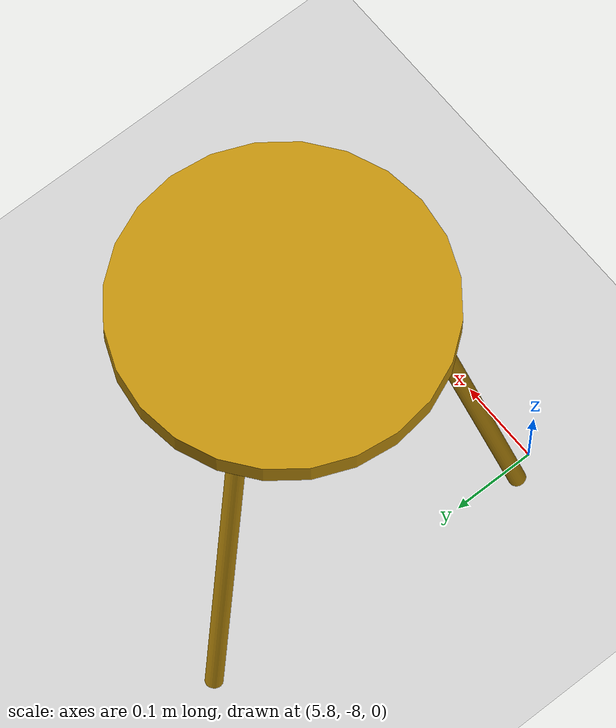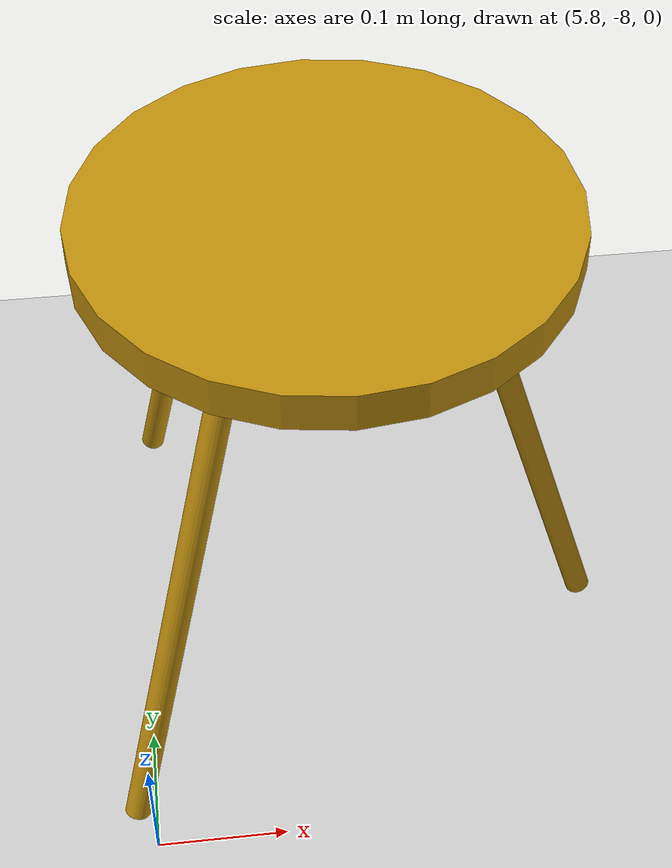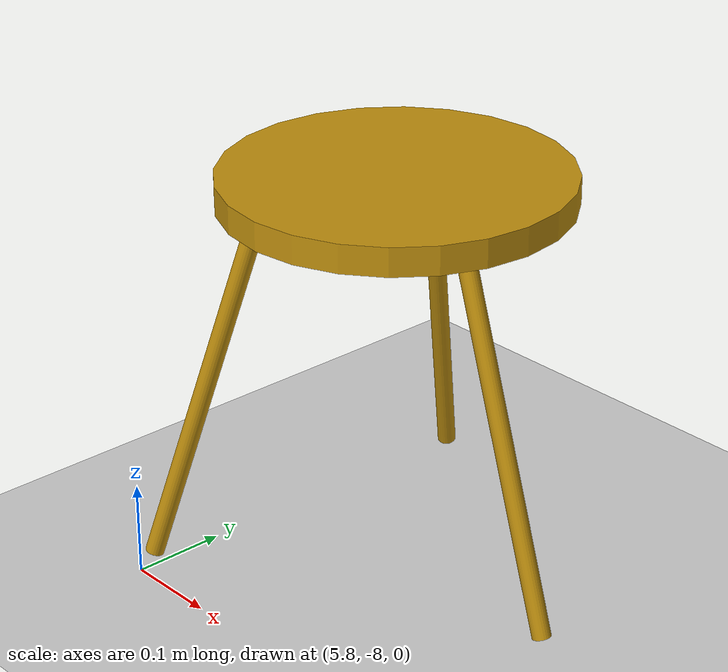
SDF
<sdf version="1.6">
 <world name="default">
  <model name="ground_plane">
   <static>1</static>
   <link name="link">
    <collision name="collision">
     <geometry><plane><normal>0 0 1</normal><size>100 100</size></plane></geometry>
     <surface>
      <contact><collide_bitmask>65535</collide_bitmask></contact>
      <friction><ode><mu>100</mu><mu2>50</mu2></ode></friction>
     </surface>
    </collision>
    <visual name="visual">
     <cast_shadows>0</cast_shadows>
     <geometry><plane><normal>0 0 1</normal><size>100 100</size></plane></geometry>
     <material>
      <script><uri>file://media/materials/scripts/gazebo.material</uri><name>Gazebo/Grey</name></script>
     </material>
    </visual>
   </link>
  </model>
  <model name="my_stool">
   <link name="link">
    <inertial>
     <mass>1</mass>
     <inertia><ixx>0.145833</ixx><ixy>0</ixy><ixz>0</ixz><iyy>0.145833</iyy><iyz>0</iyz><izz>0.125</izz></inertia>
    </inertial>
    <gravity>0</gravity>
    <visual name="visual">
     <geometry><cylinder><radius>0.18</radius><length>0.03</length></cylinder></geometry>
     <material>
      <script><name>Gazebo/Grey</name><uri>file://media/materials/scripts/gazebo.material</uri></script>
      <shader type="pixel"><normal_map>__default__</normal_map></shader>
      <ambient>0.75 0.56 0.05 1</ambient>
      <diffuse>0.75 0.56 0.05 1</diffuse>
      <specular>0.01 0.01 0.01 1</specular>
      <emissive>0 0 0 1</emissive>
     </material>
     <pose>0 0 0.42 0 -0 0</pose>
    </visual>
    <collision name="collision">
     <pose>0 0 0.42 0 -0 0</pose>
     <geometry><cylinder><radius>0.18</radius><length>0.03</length></cylinder></geometry>
     <surface>
      <friction>
       <ode><mu>1</mu><mu2>1</mu2><fdir1>0 0 0</fdir1><slip1>0</slip1><slip2>0</slip2></ode>
       <torsional>
        <coefficient>1</coefficient>
        <patch_radius>0</patch_radius>
        <surface_radius>0</surface_radius>
        <use_patch_radius>1</use_patch_radius>
        <ode><slip>0</slip></ode>
       </torsional>
      </friction>
      <bounce><restitution_coefficient>0</restitution_coefficient><threshold>1e+06</threshold></bounce>
      <contact>
       <collide_without_contact>0</collide_without_contact>
       <collide_without_contact_bitmask>1</collide_without_contact_bitmask>
       <collide_bitmask>1</collide_bitmask>
       <ode>
        <soft_cfm>0</soft_cfm>
        <soft_erp>0.2</soft_erp>
        <kp>1e+13</kp>
        <kd>1</kd>
        <max_vel>0.01</max_vel>
        <min_depth>0</min_depth>
       </ode>
       <bullet>
        <split_impulse>1</split_impulse>
        <split_impulse_penetration_threshold>-0.01</split_impulse_penetration_threshold>
        <soft_cfm>0</soft_cfm>
        <soft_erp>0.2</soft_erp>
        <kp>1e+13</kp>
        <kd>1</kd>
       </bullet>
      </contact>
     </surface>
    </collision>
   </link>
   <link name="link_clone">
    <inertial>
     <mass>1</mass>
     <inertia><ixx>0.145833</ixx><ixy>0</ixy><ixz>0</ixz><iyy>0.145833</iyy><iyz>0</iyz><izz>0.125</izz></inertia>
    </inertial>
    <pose>0.154365 -0.002852 0.007514 0 -0 0</pose>
    <gravity>0</gravity>
    <visual name="visual">
     <geometry><cylinder><radius>0.01</radius><length>0.42</length></cylinder></geometry>
     <material>
      <script><name>Gazebo/Grey</name><uri>file://media/materials/scripts/gazebo.material</uri></script>
      <shader type="pixel"><normal_map>__default__</normal_map></shader>
      <ambient>0.75 0.56 0.05 1</ambient>
      <diffuse>0.75 0.56 0.05 1</diffuse>
      <specular>0.01 0.01 0.01 1</specular>
      <emissive>0 0 0 1</emissive>
     </material>
     <pose>0 0 0.196 0 -0.3 0</pose>
    </visual>
    <collision name="collision">
     <pose>0 0 0.196 0 -0.3 0</pose>
     <geometry><cylinder><radius>0.01</radius><length>0.42</length></cylinder></geometry>
     <surface>
      <friction>
       <ode><mu>1</mu><mu2>1</mu2><fdir1>0 0 0</fdir1><slip1>0</slip1><slip2>0</slip2></ode>
       <torsional>
        <coefficient>1</coefficient>
        <patch_radius>0</patch_radius>
        <surface_radius>0</surface_radius>
        <use_patch_radius>1</use_patch_radius>
        <ode><slip>0</slip></ode>
       </torsional>
      </friction>
      <bounce><restitution_coefficient>0</restitution_coefficient><threshold>1e+06</threshold></bounce>
      <contact>
       <collide_without_contact>0</collide_without_contact>
       <collide_without_contact_bitmask>1</collide_without_contact_bitmask>
       <collide_bitmask>1</collide_bitmask>
       <ode>
        <soft_cfm>0</soft_cfm>
        <soft_erp>0.2</soft_erp>
        <kp>1e+13</kp>
        <kd>1</kd>
        <max_vel>0.01</max_vel>
        <min_depth>0</min_depth>
       </ode>
       <bullet>
        <split_impulse>1</split_impulse>
        <split_impulse_penetration_threshold>-0.01</split_impulse_penetration_threshold>
        <soft_cfm>0</soft_cfm>
        <soft_erp>0.2</soft_erp>
        <kp>1e+13</kp>
        <kd>1</kd>
       </bullet>
      </contact>
     </surface>
    </collision>
   </link>
   <link name="link_clone_clone">
    <inertial>
     <mass>1</mass>
     <inertia><ixx>0.145833</ixx><ixy>0</ixy><ixz>0</ixz><iyy>0.145833</iyy><iyz>0</iyz><izz>0.125</izz></inertia>
    </inertial>
    <pose>-0.108427 0.162559 0.007514 0 -0 2.21012</pose>
    <gravity>0</gravity>
    <visual name="visual">
     <geometry><cylinder><radius>0.01</radius><length>0.42</length></cylinder></geometry>
     <material>
      <script><name>Gazebo/Grey</name><uri>file://media/materials/scripts/gazebo.material</uri></script>
      <shader type="pixel"><normal_map>__default__</normal_map></shader>
      <ambient>0.75 0.56 0.05 1</ambient>
      <diffuse>0.75 0.56 0.05 1</diffuse>
      <specular>0.01 0.01 0.01 1</specular>
      <emissive>0 0 0 1</emissive>
     </material>
     <pose>0 0 0.196 0 -0.3 0</pose>
    </visual>
    <collision name="collision">
     <pose>0 0 0.14 0 -0.3 0</pose>
     <geometry><cylinder><radius>0.01</radius><length>0.42</length></cylinder></geometry>
     <surface>
      <friction>
       <ode><mu>1</mu><mu2>1</mu2><fdir1>0 0 0</fdir1><slip1>0</slip1><slip2>0</slip2></ode>
       <torsional>
        <coefficient>1</coefficient>
        <patch_radius>0</patch_radius>
        <surface_radius>0</surface_radius>
        <use_patch_radius>1</use_patch_radius>
        <ode><slip>0</slip></ode>
       </torsional>
      </friction>
      <bounce><restitution_coefficient>0</restitution_coefficient><threshold>1e+06</threshold></bounce>
      <contact>
       <collide_without_contact>0</collide_without_contact>
       <collide_without_contact_bitmask>1</collide_without_contact_bitmask>
       <collide_bitmask>1</collide_bitmask>
       <ode>
        <soft_cfm>0</soft_cfm>
        <soft_erp>0.2</soft_erp>
        <kp>1e+13</kp>
        <kd>1</kd>
        <max_vel>0.01</max_vel>
        <min_depth>0</min_depth>
       </ode>
       <bullet>
        <split_impulse>1</split_impulse>
        <split_impulse_penetration_threshold>-0.01</split_impulse_penetration_threshold>
        <soft_cfm>0</soft_cfm>
        <soft_erp>0.2</soft_erp>
        <kp>1e+13</kp>
        <kd>1</kd>
       </bullet>
      </contact>
     </surface>
    </collision>
   </link>
   <link name="link_clone_clone_clone">
    <inertial>
     <mass>1</mass>
     <inertia><ixx>0.145833</ixx><ixy>0</ixy><ixz>0</ixz><iyy>0.145833</iyy><iyz>0</iyz><izz>0.125</izz></inertia>
    </inertial>
    <pose>-0.123134 -0.149725 0.010416 0 0 -2.45292</pose>
    <visual name="visual">
     <geometry><cylinder><radius>0.01</radius><length>0.42</length></cylinder></geometry>
     <material>
      <script><name>Gazebo/Grey</name><uri>file://media/materials/scripts/gazebo.material</uri></script>
      <shader type="pixel"><normal_map>__default__</normal_map></shader>
      <ambient>0.75 0.56 0.05 1</ambient>
      <diffuse>0.75 0.56 0.05 1</diffuse>
      <specular>0.01 0.01 0.01 1</specular>
      <emissive>0 0 0 1</emissive>
     </material>
     <pose>0 0 0.196 0 -0.3 0</pose>
    </visual>
    <collision name="collision">
     <pose>0 0 0.196 0 -0.3 0</pose>
     <geometry><cylinder><radius>0.01</radius><length>0.42</length></cylinder></geometry>
     <surface>
      <friction>
       <ode><mu>1</mu><mu2>1</mu2><fdir1>0 0 0</fdir1><slip1>0</slip1><slip2>0</slip2></ode>
       <torsional>
        <coefficient>1</coefficient>
        <patch_radius>0</patch_radius>
        <surface_radius>0</surface_radius>
        <use_patch_radius>1</use_patch_radius>
        <ode><slip>0</slip></ode>
       </torsional>
      </friction>
      <bounce><restitution_coefficient>0</restitution_coefficient><threshold>1e+06</threshold></bounce>
      <contact>
       <collide_without_contact>0</collide_without_contact>
       <collide_without_contact_bitmask>1</collide_without_contact_bitmask>
       <collide_bitmask>1</collide_bitmask>
       <ode>
        <soft_cfm>0</soft_cfm>
        <soft_erp>0.2</soft_erp>
        <kp>1e+13</kp>
        <kd>1</kd>
        <max_vel>0.01</max_vel>
        <min_depth>0</min_depth>
       </ode>
       <bullet>
        <split_impulse>1</split_impulse>
        <split_impulse_penetration_threshold>-0.01</split_impulse_penetration_threshold>
        <soft_cfm>0</soft_cfm>
        <soft_erp>0.2</soft_erp>
        <kp>1e+13</kp>
        <kd>1</kd>
       </bullet>
      </contact>
     </surface>
    </collision>
   </link>
   <static>1</static>
   <pose>5.95655 -7.78195 0 0 -0 0</pose>
  </model>
 </world>
</sdf>
